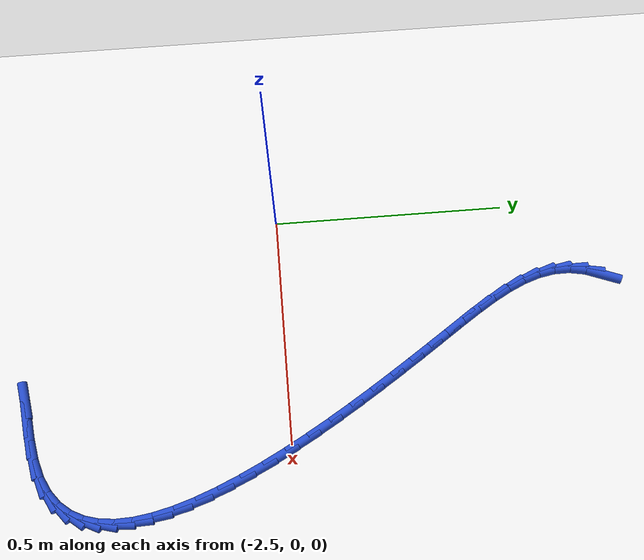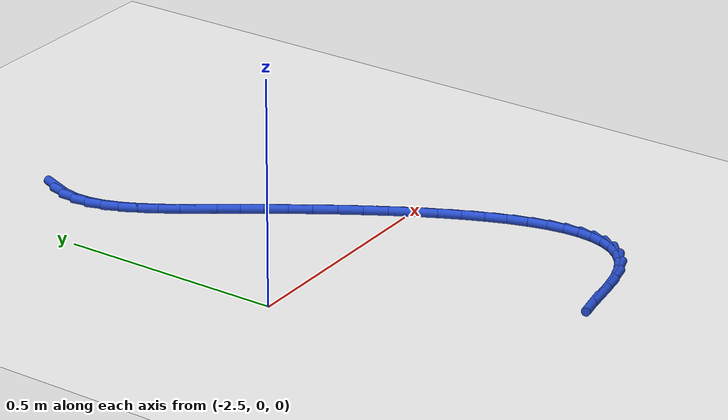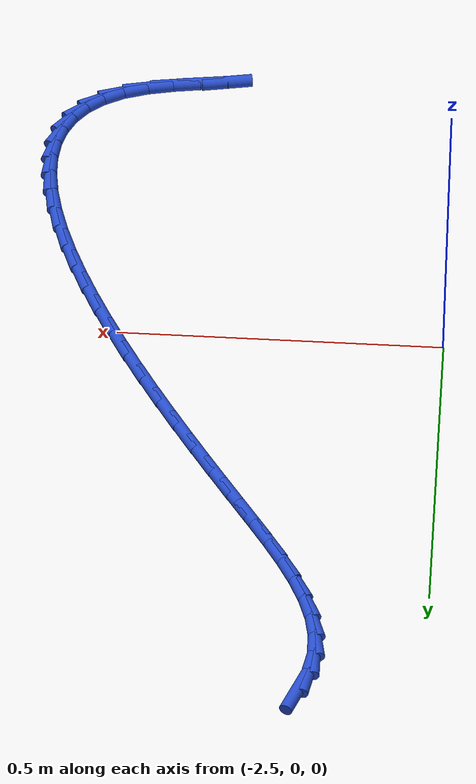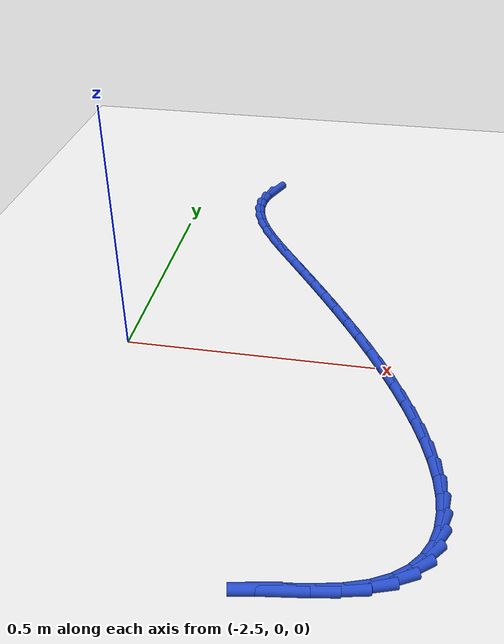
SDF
<sdf version="1.6">
 <world name="default">
  <model name="ground_plane">
   <static>1</static>
   <link name="link">
    <collision name="collision">
     <geometry><plane><normal>0 0 1</normal><size>100 100</size></plane></geometry>
     <surface><friction><ode><mu>100</mu><mu2>50</mu2></ode></friction></surface>
    </collision>
    <visual name="visual">
     <cast_shadows>0</cast_shadows>
     <geometry><plane><normal>0 0 1</normal><size>100 100</size></plane></geometry>
     <material>
      <script><uri>file://media/materials/scripts/gazebo.material</uri><name>Gazebo/WhiteGlow</name></script>
     </material>
    </visual>
   </link>
  </model>
  <model name="line">
   <link name="link_95">
    <pose>-2.316374434569442 0.6949229300633128 0.01 0 1.57 1.193088119253103</pose>
    <collision name="collision">
     <geometry><cylinder><radius>0.01</radius><length>0.08</length></cylinder></geometry>
    </collision>
    <visual name="visual">
     <material>
      <script><name>Gazebo/Blue</name><uri>file://media/materials/scripts/gazebo.material</uri></script>
     </material>
     <geometry><cylinder><radius>0.01</radius><length>0.08</length></cylinder></geometry>
    </visual>
   </link>
   <link name="link_96">
    <pose>-2.330130026714827 0.6602529271189114 0.01 0 1.57 1.3868801457460507</pose>
    <collision name="collision">
     <geometry><cylinder><radius>0.01</radius><length>0.08</length></cylinder></geometry>
    </collision>
    <visual name="visual">
     <material>
      <script><name>Gazebo/Blue</name><uri>file://media/materials/scripts/gazebo.material</uri></script>
     </material>
     <geometry><cylinder><radius>0.01</radius><length>0.08</length></cylinder></geometry>
    </visual>
   </link>
   <link name="link_97">
    <pose>-2.336568259820043 0.6256421744370742 0.01 0 1.57 -1.5589951216123625</pose>
    <collision name="collision">
     <geometry><cylinder><radius>0.01</radius><length>0.08</length></cylinder></geometry>
    </collision>
    <visual name="visual">
     <material>
      <script><name>Gazebo/Blue</name><uri>file://media/materials/scripts/gazebo.material</uri></script>
     </material>
     <geometry><cylinder><radius>0.01</radius><length>0.08</length></cylinder></geometry>
    </visual>
   </link>
   <link name="link_98">
    <pose>-2.3361617294165953 0.5911955628665362 0.01 0 1.57 -1.3844287032528448</pose>
    <collision name="collision">
     <geometry><cylinder><radius>0.01</radius><length>0.08</length></cylinder></geometry>
    </collision>
    <visual name="visual">
     <material>
      <script><name>Gazebo/Blue</name><uri>file://media/materials/scripts/gazebo.material</uri></script>
     </material>
     <geometry><cylinder><radius>0.01</radius><length>0.08</length></cylinder></geometry>
    </visual>
   </link>
   <link name="link_99">
    <pose>-2.3296530496894436 0.5566769622053682 0.01 0 1.57 -1.2423599768130986</pose>
    <collision name="collision">
     <geometry><cylinder><radius>0.01</radius><length>0.08</length></cylinder></geometry>
    </collision>
    <visual name="visual">
     <material>
      <script><name>Gazebo/Blue</name><uri>file://media/materials/scripts/gazebo.material</uri></script>
     </material>
     <geometry><cylinder><radius>0.01</radius><length>0.08</length></cylinder></geometry>
    </visual>
   </link>
   <link name="link_100">
    <pose>-2.317784842204729 0.52185023292955 0.01 0 1.57 -1.134664981517631</pose>
    <collision name="collision">
     <geometry><cylinder><radius>0.01</radius><length>0.08</length></cylinder></geometry>
    </collision>
    <visual name="visual">
     <material>
      <script><name>Gazebo/Blue</name><uri>file://media/materials/scripts/gazebo.material</uri></script>
     </material>
     <geometry><cylinder><radius>0.01</radius><length>0.08</length></cylinder></geometry>
    </visual>
   </link>
   <link name="link_101">
    <pose>-2.3012997285285954 0.4864792355150629 0.01 0 1.57 -1.0578978091776103</pose>
    <collision name="collision">
     <geometry><cylinder><radius>0.01</radius><length>0.08</length></cylinder></geometry>
    </collision>
    <visual name="visual">
     <material>
      <script><name>Gazebo/Blue</name><uri>file://media/materials/scripts/gazebo.material</uri></script>
     </material>
     <geometry><cylinder><radius>0.01</radius><length>0.08</length></cylinder></geometry>
    </visual>
   </link>
   <link name="link_102">
    <pose>-2.280940330227184 0.45032783043788666 0.01 0 1.57 -1.0071615309196893</pose>
    <collision name="collision">
     <geometry><cylinder><radius>0.01</radius><length>0.08</length></cylinder></geometry>
    </collision>
    <visual name="visual">
     <material>
      <script><name>Gazebo/Blue</name><uri>file://media/materials/scripts/gazebo.material</uri></script>
     </material>
     <geometry><cylinder><radius>0.01</radius><length>0.08</length></cylinder></geometry>
    </visual>
   </link>
   <link name="link_103">
    <pose>-2.2574492688666354 0.41315987817400246 0.01 0 1.57 -0.9780097790414127</pose>
    <collision name="collision">
     <geometry><cylinder><radius>0.01</radius><length>0.08</length></cylinder></geometry>
    </collision>
    <visual name="visual">
     <material>
      <script><name>Gazebo/Blue</name><uri>file://media/materials/scripts/gazebo.material</uri></script>
     </material>
     <geometry><cylinder><radius>0.01</radius><length>0.08</length></cylinder></geometry>
    </visual>
   </link>
   <link name="link_104">
    <pose>-2.231569166013094 0.3747392391993901 0.01 0 1.57 -0.9669996254737195</pose>
    <collision name="collision">
     <geometry><cylinder><radius>0.01</radius><length>0.08</length></cylinder></geometry>
    </collision>
    <visual name="visual">
     <material>
      <script><name>Gazebo/Blue</name><uri>file://media/materials/scripts/gazebo.material</uri></script>
     </material>
     <geometry><cylinder><radius>0.01</radius><length>0.08</length></cylinder></geometry>
    </visual>
   </link>
   <link name="link_105">
    <pose>-2.2040426239050577 0.3348297981375612 0.01 0 1.57 -0.9692239939524687</pose>
    <collision name="collision">
     <geometry><cylinder><radius>0.01</radius><length>0.08</length></cylinder></geometry>
    </collision>
    <visual name="visual">
     <material>
      <script><name>Gazebo/Blue</name><uri>file://media/materials/scripts/gazebo.material</uri></script>
     </material>
     <geometry><cylinder><radius>0.01</radius><length>0.08</length></cylinder></geometry>
    </visual>
   </link>
   <link name="link_106">
    <pose>-2.1755318067944485 0.2932959370613376 0.01 0 1.57 -0.9755109589556682</pose>
    <collision name="collision">
     <geometry><cylinder><radius>0.01</radius><length>0.08</length></cylinder></geometry>
    </collision>
    <visual name="visual">
     <material>
      <script><name>Gazebo/Blue</name><uri>file://media/materials/scripts/gazebo.material</uri></script>
     </material>
     <geometry><cylinder><radius>0.01</radius><length>0.08</length></cylinder></geometry>
    </visual>
   </link>
   <link name="link_107">
    <pose>-2.1464349024227594 0.25033184448332063 0.01 0 1.57 -0.9840945050057788</pose>
    <collision name="collision">
     <geometry><cylinder><radius>0.01</radius><length>0.08</length></cylinder></geometry>
    </collision>
    <visual name="visual">
     <material>
      <script><name>Gazebo/Blue</name><uri>file://media/materials/scripts/gazebo.material</uri></script>
     </material>
     <geometry><cylinder><radius>0.01</radius><length>0.08</length></cylinder></geometry>
    </visual>
   </link>
   <link name="link_108">
    <pose>-2.11709602961038 0.2061992614356194 0.01 0 1.57 -0.9950276292496645</pose>
    <collision name="collision">
     <geometry><cylinder><radius>0.01</radius><length>0.08</length></cylinder></geometry>
    </collision>
    <visual name="visual">
     <material>
      <script><name>Gazebo/Blue</name><uri>file://media/materials/scripts/gazebo.material</uri></script>
     </material>
     <geometry><cylinder><radius>0.01</radius><length>0.08</length></cylinder></geometry>
    </visual>
   </link>
   <link name="link_109">
    <pose>-2.0878593071777045 0.16115992895034476 0.01 0 1.57 -1.0084635764442826</pose>
    <collision name="collision">
     <geometry><cylinder><radius>0.01</radius><length>0.08</length></cylinder></geometry>
    </collision>
    <visual name="visual">
     <material>
      <script><name>Gazebo/Blue</name><uri>file://media/materials/scripts/gazebo.material</uri></script>
     </material>
     <geometry><cylinder><radius>0.01</radius><length>0.08</length></cylinder></geometry>
    </visual>
   </link>
   <link name="link_110">
    <pose>-2.059068853945123 0.11547558805960566 0.01 0 1.57 -1.0246585222753948</pose>
    <collision name="collision">
     <geometry><cylinder><radius>0.01</radius><length>0.08</length></cylinder></geometry>
    </collision>
    <visual name="visual">
     <material>
      <script><name>Gazebo/Blue</name><uri>file://media/materials/scripts/gazebo.material</uri></script>
     </material>
     <geometry><cylinder><radius>0.01</radius><length>0.08</length></cylinder></geometry>
    </visual>
   </link>
   <link name="link_111">
    <pose>-2.031068788733028 0.06940797979551307 0.01 0 1.57 -1.0439844477762907</pose>
    <collision name="collision">
     <geometry><cylinder><radius>0.01</radius><length>0.08</length></cylinder></geometry>
    </collision>
    <visual name="visual">
     <material>
      <script><name>Gazebo/Blue</name><uri>file://media/materials/scripts/gazebo.material</uri></script>
     </material>
     <geometry><cylinder><radius>0.01</radius><length>0.08</length></cylinder></geometry>
    </visual>
   </link>
   <link name="link_112">
    <pose>-2.0042032303618105 0.023218845190176397 0.01 0 1.57 -1.066952865848165</pose>
    <collision name="collision">
     <geometry><cylinder><radius>0.01</radius><length>0.08</length></cylinder></geometry>
    </collision>
    <visual name="visual">
     <material>
      <script><name>Gazebo/Blue</name><uri>file://media/materials/scripts/gazebo.material</uri></script>
     </material>
     <geometry><cylinder><radius>0.01</radius><length>0.08</length></cylinder></geometry>
    </visual>
   </link>
   <link name="link_113">
    <pose>-1.978816297651862 -0.022830074724294425 0.01 0 1.57 -1.094251674279906</pose>
    <collision name="collision">
     <geometry><cylinder><radius>0.01</radius><length>0.08</length></cylinder></geometry>
    </collision>
    <visual name="visual">
     <material>
      <script><name>Gazebo/Blue</name><uri>file://media/materials/scripts/gazebo.material</uri></script>
     </material>
     <geometry><cylinder><radius>0.01</radius><length>0.08</length></cylinder></geometry>
    </visual>
   </link>
   <link name="link_114">
    <pose>-1.9552521094235737 -0.06847703891579046 0.01 0 1.57 -1.126799041335881</pose>
    <collision name="collision">
     <geometry><cylinder><radius>0.01</radius><length>0.08</length></cylinder></geometry>
    </collision>
    <visual name="visual">
     <material>
      <script><name>Gazebo/Blue</name><uri>file://media/materials/scripts/gazebo.material</uri></script>
     </material>
     <geometry><cylinder><radius>0.01</radius><length>0.08</length></cylinder></geometry>
    </visual>
   </link>
   <link name="link_115">
    <pose>-1.933854784497339 -0.11346030635219975 0.01 0 1.57 -1.1658198685270613</pose>
    <collision name="collision">
     <geometry><cylinder><radius>0.01</radius><length>0.08</length></cylinder></geometry>
    </collision>
    <visual name="visual">
     <material>
      <script><name>Gazebo/Blue</name><uri>file://media/materials/scripts/gazebo.material</uri></script>
     </material>
     <geometry><cylinder><radius>0.01</radius><length>0.08</length></cylinder></geometry>
    </visual>
   </link>
   <link name="link_116">
    <pose>-1.9149684416935482 -0.15751813600141334 0.01 0 1.57 -1.2129513929513396</pose>
    <collision name="collision">
     <geometry><cylinder><radius>0.01</radius><length>0.08</length></cylinder></geometry>
    </collision>
    <visual name="visual">
     <material>
      <script><name>Gazebo/Blue</name><uri>file://media/materials/scripts/gazebo.material</uri></script>
     </material>
     <geometry><cylinder><radius>0.01</radius><length>0.08</length></cylinder></geometry>
    </visual>
   </link>
   <link name="link_117">
    <pose>-1.898937199832593 -0.20038878683132133 0.01 0 1.57 -1.2703826076594995</pose>
    <collision name="collision">
     <geometry><cylinder><radius>0.01</radius><length>0.08</length></cylinder></geometry>
    </collision>
    <visual name="visual">
     <material>
      <script><name>Gazebo/Blue</name><uri>file://media/materials/scripts/gazebo.material</uri></script>
     </material>
     <geometry><cylinder><radius>0.01</radius><length>0.08</length></cylinder></geometry>
    </visual>
   </link>
   <link name="link_118">
    <pose>-1.8861051777348647 -0.2418105178098147 0.01 0 1.57 -1.3410207447564608</pose>
    <collision name="collision">
     <geometry><cylinder><radius>0.01</radius><length>0.08</length></cylinder></geometry>
    </collision>
    <visual name="visual">
     <material>
      <script><name>Gazebo/Blue</name><uri>file://media/materials/scripts/gazebo.material</uri></script>
     </material>
     <geometry><cylinder><radius>0.01</radius><length>0.08</length></cylinder></geometry>
    </visual>
   </link>
   <link name="link_119">
    <pose>-1.8768164942207564 -0.2815215879047817 0.01 0 1.57 -1.4286399180484344</pose>
    <collision name="collision">
     <geometry><cylinder><radius>0.01</radius><length>0.08</length></cylinder></geometry>
    </collision>
    <visual name="visual">
     <material>
      <script><name>Gazebo/Blue</name><uri>file://media/materials/scripts/gazebo.material</uri></script>
     </material>
     <geometry><cylinder><radius>0.01</radius><length>0.08</length></cylinder></geometry>
    </visual>
   </link>
   <link name="link_120">
    <pose>-1.8714152681106586 -0.3192602560841133 0.01 0 1.57 -1.5378645520882934</pose>
    <collision name="collision">
     <geometry><cylinder><radius>0.01</radius><length>0.08</length></cylinder></geometry>
    </collision>
    <visual name="visual">
     <material>
      <script><name>Gazebo/Blue</name><uri>file://media/materials/scripts/gazebo.material</uri></script>
     </material>
     <geometry><cylinder><radius>0.01</radius><length>0.08</length></cylinder></geometry>
    </visual>
   </link>
   <link name="link_121">
    <pose>-1.8702456182249636 -0.35476478131569955 0.01 0 1.57 1.4679737593424673</pose>
    <collision name="collision">
     <geometry><cylinder><radius>0.01</radius><length>0.08</length></cylinder></geometry>
    </collision>
    <visual name="visual">
     <material>
      <script><name>Gazebo/Blue</name><uri>file://media/materials/scripts/gazebo.material</uri></script>
     </material>
     <geometry><cylinder><radius>0.01</radius><length>0.08</length></cylinder></geometry>
    </visual>
   </link>
   <link name="link_122">
    <pose>-1.873651663384062 -0.3877734225674312 0.01 0 1.57 1.3022202379985153</pose>
    <collision name="collision">
     <geometry><cylinder><radius>0.01</radius><length>0.08</length></cylinder></geometry>
    </collision>
    <visual name="visual">
     <material>
      <script><name>Gazebo/Blue</name><uri>file://media/materials/scripts/gazebo.material</uri></script>
     </material>
     <geometry><cylinder><radius>0.01</radius><length>0.08</length></cylinder></geometry>
    </visual>
   </link>
   <link name="link_123">
    <pose>-1.8819775224083464 -0.418024438807197 0.01 0 1.57 1.107913808169862</pose>
    <collision name="collision">
     <geometry><cylinder><radius>0.01</radius><length>0.08</length></cylinder></geometry>
    </collision>
    <visual name="visual">
     <material>
      <script><name>Gazebo/Blue</name><uri>file://media/materials/scripts/gazebo.material</uri></script>
     </material>
     <geometry><cylinder><radius>0.01</radius><length>0.08</length></cylinder></geometry>
    </visual>
   </link>
   <link name="link_124">
    <pose>-1.895567314118208 -0.4452560890028875 0.01 0 1.57 0.8951037225492035</pose>
    <collision name="collision">
     <geometry><cylinder><radius>0.01</radius><length>0.08</length></cylinder></geometry>
    </collision>
    <visual name="visual">
     <material>
      <script><name>Gazebo/Blue</name><uri>file://media/materials/scripts/gazebo.material</uri></script>
     </material>
     <geometry><cylinder><radius>0.01</radius><length>0.08</length></cylinder></geometry>
    </visual>
   </link>
   <link name="link_125">
    <pose>-1.9147651573340383 -0.4692066321223929 0.01 0 1.57 0.6816769627677864</pose>
    <collision name="collision">
     <geometry><cylinder><radius>0.01</radius><length>0.08</length></cylinder></geometry>
    </collision>
    <visual name="visual">
     <material>
      <script><name>Gazebo/Blue</name><uri>file://media/materials/scripts/gazebo.material</uri></script>
     </material>
     <geometry><cylinder><radius>0.01</radius><length>0.08</length></cylinder></geometry>
    </visual>
   </link>
   <link name="link_126">
    <pose>-1.9399151708762297 -0.48961432713360376 0.01 0 1.57 0.48578240839493836</pose>
    <collision name="collision">
     <geometry><cylinder><radius>0.01</radius><length>0.08</length></cylinder></geometry>
    </collision>
    <visual name="visual">
     <material>
      <script><name>Gazebo/Blue</name><uri>file://media/materials/scripts/gazebo.material</uri></script>
     </material>
     <geometry><cylinder><radius>0.01</radius><length>0.08</length></cylinder></geometry>
    </visual>
   </link>
   <link name="link_127">
    <pose>-1.9713614735651728 -0.5062174330044091 0.01 0 1.57 0.3188442115365071</pose>
    <collision name="collision">
     <geometry><cylinder><radius>0.01</radius><length>0.08</length></cylinder></geometry>
    </collision>
    <visual name="visual">
     <material>
      <script><name>Gazebo/Blue</name><uri>file://media/materials/scripts/gazebo.material</uri></script>
     </material>
     <geometry><cylinder><radius>0.01</radius><length>0.08</length></cylinder></geometry>
    </visual>
   </link>
   <link name="link_128">
    <pose>-2.009391471540063 -0.5187714083852667 0.01 0 1.57 0.20504276724686846</pose>
    <collision name="collision">
     <geometry><cylinder><radius>0.01</radius><length>0.08</length></cylinder></geometry>
    </collision>
    <visual name="visual">
     <material>
      <script><name>Gazebo/Blue</name><uri>file://media/materials/scripts/gazebo.material</uri></script>
     </material>
     <geometry><cylinder><radius>0.01</radius><length>0.08</length></cylinder></geometry>
    </visual>
   </link>
   <link name="link_129">
    <pose>-2.052184819603235 -0.5276709455717183 0.01 0 1.57 0.1487897687330351</pose>
    <collision name="collision">
     <geometry><cylinder><radius>0.01</radius><length>0.08</length></cylinder></geometry>
    </collision>
    <visual name="visual">
     <material>
      <script><name>Gazebo/Blue</name><uri>file://media/materials/scripts/gazebo.material</uri></script>
     </material>
     <geometry><cylinder><radius>0.01</radius><length>0.08</length></cylinder></geometry>
    </visual>
   </link>
   <link name="link_130">
    <pose>-2.0952379342472276 -0.5341245027791327 0.01 0 1.57 0.13553583142492376</pose>
    <collision name="collision">
     <geometry><cylinder><radius>0.01</radius><length>0.08</length></cylinder></geometry>
    </collision>
    <visual name="visual">
     <material>
      <script><name>Gazebo/Blue</name><uri>file://media/materials/scripts/gazebo.material</uri></script>
     </material>
     <geometry><cylinder><radius>0.01</radius><length>0.08</length></cylinder></geometry>
    </visual>
   </link>
   <link name="link_131">
    <pose>-2.1338733152026035 -0.5393932832710039 0.01 0 1.57 0.17901026534719883</pose>
    <collision name="collision">
     <geometry><cylinder><radius>0.01</radius><length>0.08</length></cylinder></geometry>
    </collision>
    <visual name="visual">
     <material>
      <script><name>Gazebo/Blue</name><uri>file://media/materials/scripts/gazebo.material</uri></script>
     </material>
     <geometry><cylinder><radius>0.01</radius><length>0.08</length></cylinder></geometry>
    </visual>
   </link>
  </model>
 </world>
</sdf>
